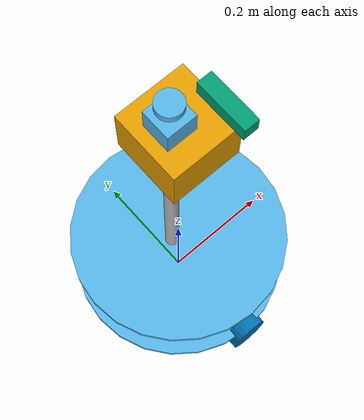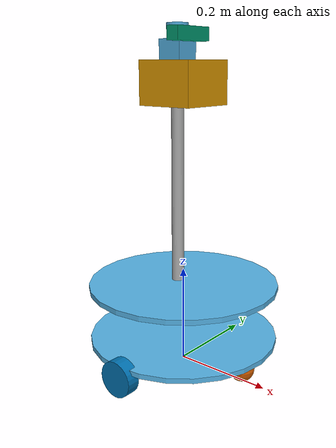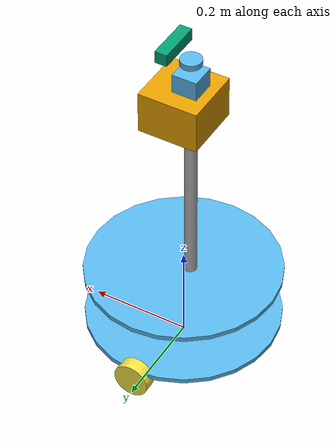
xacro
<?xml version="1.0"?>
<robot name="neurochip" xmlns:xacro="http://www.ros.org/wiki/xacro">
  <xacro:arg name="controllers" default=""/>
  <xacro:arg name="sim" default="true"/>

  <!-- Палубы: два фанерных диска; в столкновениях — один цилиндр от низа нижней до верха верхней. -->
  <xacro:property name="deck_r" value="0.195"/>        <!-- Ø0,39 ±0,02 [оценка по фото] -->
  <xacro:property name="deck_t" value="0.010"/>        <!-- толщина ±0,004 [оценка по фото] -->
  <xacro:property name="deck_low_z" value="0.050"/>    <!-- низ нижней палубы ±0,015 [оценка по фото] -->
  <xacro:property name="deck_top_z" value="0.175"/>    <!-- верх верхней палубы ±0,03 [оценка по фото] -->
  <!-- Ведущие колёса JGB37-520 на поперечной оси через центр. -->
  <xacro:property name="wheel_r" value="0.036"/>       <!-- Ø0,072 ±0,005 [оценка по фото] -->
  <xacro:property name="wheel_w" value="0.027"/>       <!-- ширина ±0,005 [оценка по фото] -->
  <xacro:property name="wheel_y" value="0.19"/>        <!-- колея 0,38 ±0,03 [оценка по фото] -->
  <!-- Поворотные ролики спереди и сзади — в Gazebo сферы без трения. -->
  <xacro:property name="caster_x" value="0.15"/>       <!-- ±0,03 [оценка по фото] -->
  <xacro:property name="caster_r" value="0.025"/>      <!-- Ø0,04–0,05 ±0,01 [оценка по фото] -->
  <!-- Мачта Jmary MT-49 (телескоп 42,5–98 см) до платформы датчиков; высота на роботе может меняться (RS10). -->
  <xacro:property name="mast_x" value="-0.015"/>       <!-- ±0,015 [оценка по фото] -->
  <xacro:property name="mast_r" value="0.0125"/>       <!-- Ø0,020–0,030 ±0,005 [оценка по фото] -->
  <xacro:property name="platform_z" value="0.62"/>     <!-- ±0,05 [оценка по фото] -->
  <!-- Голова: платформа датчиков и ЖК-экран под ней — один бокс. -->
  <xacro:property name="head_size" value="0.12"/>      <!-- ширина платформы ±0,02 [оценка по фото] -->
  <xacro:property name="head_low_z" value="0.535"/>    <!-- низ ЖК ≈0,57 − 0,035 ±0,02 [оценка по фото] -->
  <!-- URG-04LX-UG01 над мачтой: корпус 50×50×70 мм, плоскость скана в 18 мм под верхом (чертёж URG). -->
  <xacro:property name="urg_z" value="0.67"/>          <!-- плоскость скана ±0,07 [оценка по фото] -->
  <xacro:property name="urg_low_z" value="0.618"/>     <!-- низ корпуса: 0,688 − 0,070 -->
  <xacro:property name="urg_top_z" value="0.688"/>     <!-- верх: плоскость + 0,018 -->
  <xacro:property name="cam_x" value="${mast_x + 0.048 + 0.0125}"/>
  <xacro:property name="cam_y" value="-0.04175"/>
  <xacro:property name="cam_z" value="0.665"/>         <!-- оптический центр ≈0,66 ±0,06 [оценка по фото] -->
  <xacro:property name="cam_size_x" value="0.025"/>
  <xacro:property name="cam_size_y" value="0.090"/>
  <xacro:property name="cam_size_z" value="0.025"/>
  <xacro:property name="m_base" value="2.65"/>
  <xacro:property name="m_wheel" value="0.05"/>
  <xacro:property name="m_caster" value="0.075"/>
  <xacro:property name="m_mast" value="0.63"/>
  <xacro:property name="m_head" value="0.2"/>
  <xacro:property name="m_urg" value="0.16"/>
  <xacro:property name="m_cam" value="0.07"/>
  <!-- Ведущее колесо: трение резины по полу и предел момента на валу — [оценка]. -->
  <xacro:property name="wheel_mu" value="1.0"/>
  <xacro:property name="wheel_effort" value="2.0"/>
  <xacro:property name="wheel_vel_max" value="20.0"/>  <!-- рад/с (0,72 м/с); пределы робота — в diff_cont -->

  <xacro:property name="mast_h" value="${platform_z - deck_top_z}"/>
  <xacro:property name="head_h" value="${platform_z - head_low_z}"/>
  <xacro:property name="base_h" value="${deck_top_z - deck_low_z}"/>

  <xacro:macro name="cylinder_inertia" params="m r h z:=0">
    <inertial>
      <origin xyz="0 0 ${z}"/>
      <mass value="${m}"/>
      <inertia ixx="${m * (3 * r * r + h * h) / 12}" iyy="${m * (3 * r * r + h * h) / 12}" izz="${m * r * r / 2}"
               ixy="0" ixz="0" iyz="0"/>
    </inertial>
  </xacro:macro>
  <xacro:macro name="box_inertia" params="m x y z oz:=0">
    <inertial>
      <origin xyz="0 0 ${oz}"/>
      <mass value="${m}"/>
      <inertia ixx="${m * (y * y + z * z) / 12}" iyy="${m * (x * x + z * z) / 12}" izz="${m * (x * x + y * y) / 12}"
               ixy="0" ixz="0" iyz="0"/>
    </inertial>
  </xacro:macro>
  <xacro:macro name="fixed" params="name parent xyz rpy:='0 0 0'">
    <joint name="${name}_joint" type="fixed">
      <parent link="${parent}"/><child link="${name}"/>
      <origin xyz="${xyz}" rpy="${rpy}"/>
    </joint>
  </xacro:macro>

  <!-- base_link без инерции, как в articubot_one (KDL не принимает инерцию у корневого звена);
       масса базы — в chassis. -->
  <link name="base_link"/>
  <link name="chassis">
    <xacro:cylinder_inertia m="${m_base}" r="${deck_r}" h="${base_h}" z="${deck_low_z + base_h / 2}"/>
    <visual name="deck_low">
      <origin xyz="0 0 ${deck_low_z + deck_t / 2}"/>
      <geometry><cylinder radius="${deck_r}" length="${deck_t}"/></geometry>
    </visual>
    <visual name="deck_top">
      <origin xyz="0 0 ${deck_top_z - deck_t / 2}"/>
      <geometry><cylinder radius="${deck_r}" length="${deck_t}"/></geometry>
    </visual>
    <collision name="decks">
      <origin xyz="0 0 ${deck_low_z + base_h / 2}"/>
      <geometry><cylinder radius="${deck_r}" length="${base_h}"/></geometry>
    </collision>
  </link>
  <xacro:fixed name="chassis" parent="base_link" xyz="0 0 0"/>

  <link name="base_footprint"/>
  <xacro:fixed name="base_footprint" parent="base_link" xyz="0 0 0"/>

  <xacro:macro name="wheel" params="side y roll axis">
    <link name="${side}_wheel">
      <xacro:cylinder_inertia m="${m_wheel}" r="${wheel_r}" h="${wheel_w}"/>
      <visual><geometry><cylinder radius="${wheel_r}" length="${wheel_w}"/></geometry></visual>
      <collision><geometry><sphere radius="${wheel_r}"/></geometry></collision>
    </link>
    <joint name="${side}_wheel_joint" type="continuous">
      <parent link="base_link"/><child link="${side}_wheel"/>
      <origin xyz="0 ${y} ${wheel_r}" rpy="${roll} 0 0"/>
      <axis xyz="0 0 ${axis}"/>
      <limit effort="${wheel_effort}" velocity="${wheel_vel_max}"/>
    </joint>
  </xacro:macro>
  <xacro:wheel side="left" y="${wheel_y}" roll="${-pi / 2}" axis="1"/>
  <xacro:wheel side="right" y="${-wheel_y}" roll="${pi / 2}" axis="-1"/>

  <xacro:macro name="caster" params="name x">
    <link name="${name}">
      <inertial><mass value="${m_caster}"/>
        <inertia ixx="${0.4 * m_caster * caster_r * caster_r}" iyy="${0.4 * m_caster * caster_r * caster_r}"
                 izz="${0.4 * m_caster * caster_r * caster_r}" ixy="0" ixz="0" iyz="0"/>
      </inertial>
      <visual><geometry><sphere radius="${caster_r}"/></geometry></visual>
      <collision><geometry><sphere radius="${caster_r}"/></geometry></collision>
    </link>
    <xacro:fixed name="${name}" parent="base_link" xyz="${x} 0 ${caster_r}"/>
  </xacro:macro>
  <xacro:caster name="caster_front" x="${caster_x}"/>
  <xacro:caster name="caster_back" x="${-caster_x}"/>

  <link name="mast">
    <xacro:cylinder_inertia m="${m_mast}" r="${mast_r}" h="${mast_h}"/>
    <visual><geometry><cylinder radius="${mast_r}" length="${mast_h}"/></geometry></visual>
    <collision name="mast"><geometry><cylinder radius="${mast_r}" length="${mast_h}"/></geometry></collision>
  </link>
  <xacro:fixed name="mast" parent="base_link" xyz="${mast_x} 0 ${deck_top_z + mast_h / 2}"/>

  <link name="head">
    <xacro:box_inertia m="${m_head}" x="${head_size}" y="${head_size}" z="${head_h}"/>
    <visual><geometry><box size="${head_size} ${head_size} ${head_h}"/></geometry></visual>
    <collision name="head"><geometry><box size="${head_size} ${head_size} ${head_h}"/></geometry></collision>
  </link>
  <xacro:fixed name="head" parent="base_link" xyz="0 0 ${head_low_z + head_h / 2}"/>

  <!-- Визуально корпус URG — основание и крышка, окно сканирования между ними пустое: лучи gpu_lidar выходят из
       центра корпуса и иначе упёрлись бы в него самого. -->
  <link name="laser_frame">
    <xacro:box_inertia m="${m_urg}" x="0.05" y="0.05" z="${urg_top_z - urg_low_z}"
                       oz="${(urg_low_z + urg_top_z) / 2 - urg_z}"/>
    <visual name="body">
      <origin xyz="0 0 ${urg_low_z + 0.041 / 2 - urg_z}"/>
      <geometry><box size="0.05 0.05 0.041"/></geometry>
    </visual>
    <visual name="cap">
      <origin xyz="0 0 ${urg_top_z - 0.006 - urg_z}"/>
      <geometry><cylinder radius="0.021" length="0.012"/></geometry>
    </visual>
    <collision name="urg">
      <origin xyz="0 0 ${(urg_low_z + urg_top_z) / 2 - urg_z}"/>
      <geometry><box size="0.05 0.05 ${urg_top_z - urg_low_z}"/></geometry>
    </collision>
  </link>
  <xacro:fixed name="laser_frame" parent="base_link" xyz="${mast_x} 0 ${urg_z}"/>

  <!-- Кадры камеры — как у realsense2_camera: camera_link — центр корпуса, глубина у передней грани, цвет на 15 мм
       левее; оптические кадры повёрнуты (z — вдоль оси, x — вправо, y — вниз). -->
  <link name="camera_link">
    <xacro:box_inertia m="${m_cam}" x="${cam_size_x}" y="${cam_size_y}" z="${cam_size_z}"/>
    <visual><geometry><box size="${cam_size_x} ${cam_size_y} ${cam_size_z}"/></geometry></visual>
    <collision name="d435i"><geometry><box size="${cam_size_x} ${cam_size_y} ${cam_size_z}"/></geometry></collision>
  </link>
  <xacro:fixed name="camera_link" parent="base_link" xyz="${cam_x} ${cam_y} ${cam_z}"/>
  <link name="camera_depth_frame"/>
  <xacro:fixed name="camera_depth_frame" parent="camera_link" xyz="${cam_size_x / 2} 0 0"/>
  <link name="camera_depth_optical_frame"/>
  <xacro:fixed name="camera_depth_optical_frame" parent="camera_depth_frame" xyz="0 0 0"
               rpy="${-pi / 2} 0 ${-pi / 2}"/>
  <link name="camera_color_frame"/>
  <xacro:fixed name="camera_color_frame" parent="camera_link" xyz="${cam_size_x / 2} 0.015 0"/>
  <link name="camera_color_optical_frame"/>
  <xacro:fixed name="camera_color_optical_frame" parent="camera_color_frame" xyz="0 0 0"
               rpy="${-pi / 2} 0 ${-pi / 2}"/>
  <link name="camera_imu_optical_frame"/>
  <xacro:fixed name="camera_imu_optical_frame" parent="camera_link" xyz="0 0 0" rpy="${-pi / 2} 0 ${-pi / 2}"/>

  <ros2_control name="GazeboSimSystem" type="system">
    <hardware><plugin>gz_ros2_control/GazeboSimSystem</plugin></hardware>
    <xacro:macro name="wheel_iface" params="side">
      <joint name="${side}_wheel_joint">
        <command_interface name="velocity">
          <param name="min">${-wheel_vel_max}</param><param name="max">${wheel_vel_max}</param>
        </command_interface>
        <state_interface name="velocity"/>
        <state_interface name="position"/>
      </joint>
    </xacro:macro>
    <xacro:wheel_iface side="left"/>
    <xacro:wheel_iface side="right"/>
  </ros2_control>

  <xacro:if value="$(arg sim)">
    <xacro:include filename="neurochip.gazebo.xacro"/>
  </xacro:if>
</robot>
